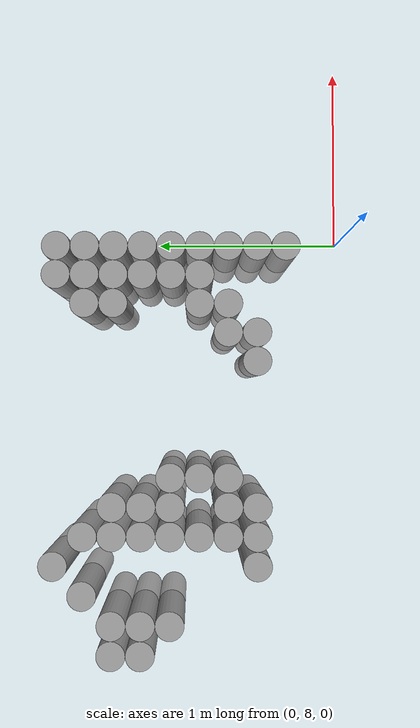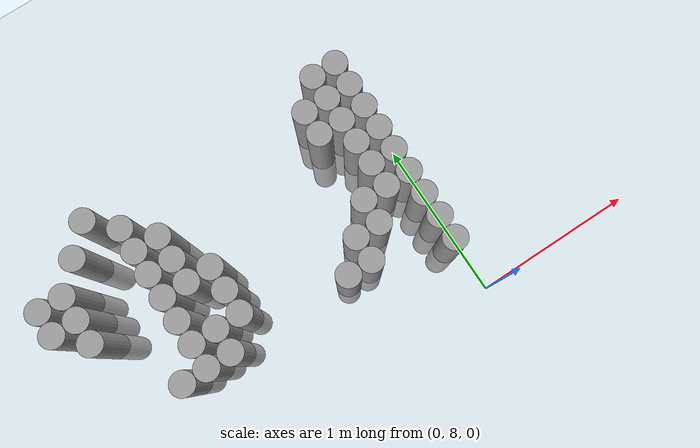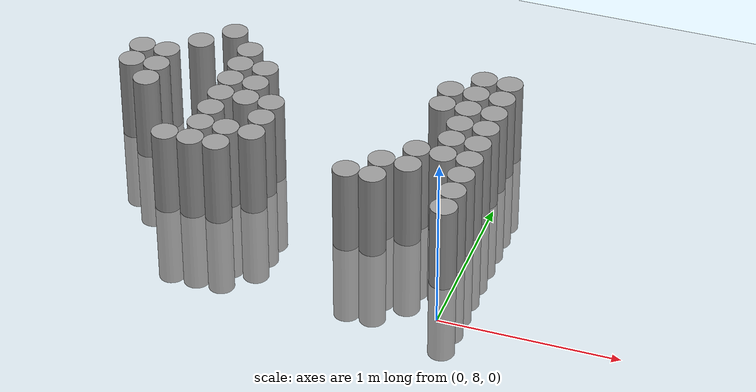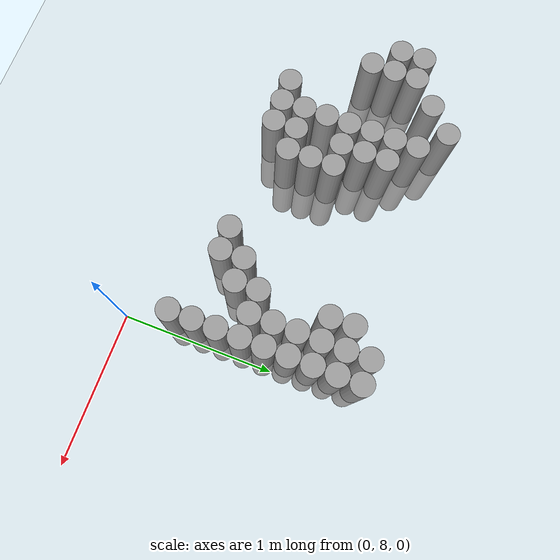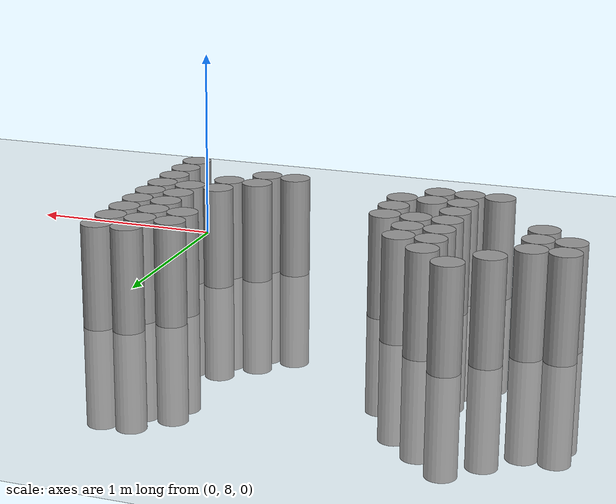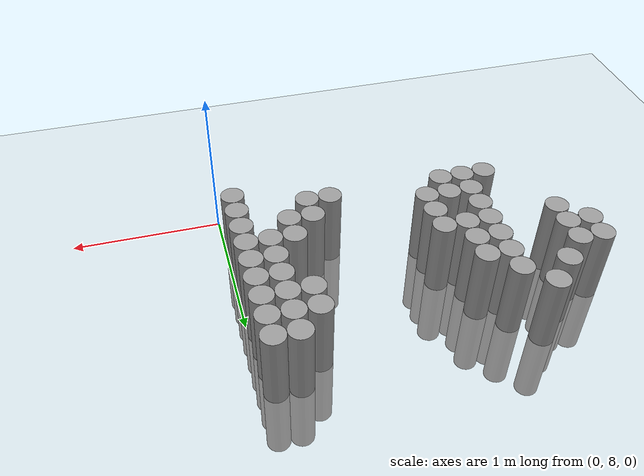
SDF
<sdf version="1.6">
 <world name="default">
  <model name="ground_plane">
   <static>1</static>
   <link name="link">
    <collision name="collision">
     <geometry><plane><normal>0 0 1</normal><size>100 100</size></plane></geometry>
     <surface><friction><ode><mu>100</mu><mu2>50</mu2></ode></friction></surface>
    </collision>
    <visual name="visual">
     <cast_shadows>0</cast_shadows>
     <geometry><plane><normal>0 0 1</normal><size>100 100</size></plane></geometry>
     <material>
      <script><uri>file://media/materials/scripts/gazebo.material</uri><name>Gazebo/Grey</name></script>
     </material>
    </visual>
   </link>
  </model>
  <model name="unit_cylinder_180">
   <pose>-2.175000 9.075000 0.000000 0.000000 0.000000 0.000000</pose>
   <link name="link">
    <inertial>
     <mass>1</mass>
     <inertia><ixx>0.145833</ixx><ixy>0</ixy><ixz>0</ixz><iyy>0.145833</iyy><iyz>0</iyz><izz>0.125</izz></inertia>
    </inertial>
    <collision name="collision">
     <geometry><cylinder><radius>0.075000</radius><length>1</length></cylinder></geometry>
    </collision>
    <visual name="visual">
     <geometry><cylinder><radius>0.075000</radius><length>1</length></cylinder></geometry>
     <material>
      <script><name>Gazebo/Grey</name><uri>file://media/materials/scripts/gazebo.material</uri></script>
     </material>
    </visual>
   </link>
  </model>
  <model name="unit_cylinder_181">
   <pose>-2.175000 9.225000 0.000000 0.000000 0.000000 0.000000</pose>
   <link name="link">
    <inertial>
     <mass>1</mass>
     <inertia><ixx>0.145833</ixx><ixy>0</ixy><ixz>0</ixz><iyy>0.145833</iyy><iyz>0</iyz><izz>0.125</izz></inertia>
    </inertial>
    <collision name="collision">
     <geometry><cylinder><radius>0.075000</radius><length>1</length></cylinder></geometry>
    </collision>
    <visual name="visual">
     <geometry><cylinder><radius>0.075000</radius><length>1</length></cylinder></geometry>
     <material>
      <script><name>Gazebo/Grey</name><uri>file://media/materials/scripts/gazebo.material</uri></script>
     </material>
    </visual>
   </link>
  </model>
  <model name="unit_cylinder_185">
   <pose>-2.025000 8.925000 0.000000 0.000000 0.000000 0.000000</pose>
   <link name="link">
    <inertial>
     <mass>1</mass>
     <inertia><ixx>0.145833</ixx><ixy>0</ixy><ixz>0</ixz><iyy>0.145833</iyy><iyz>0</iyz><izz>0.125</izz></inertia>
    </inertial>
    <collision name="collision">
     <geometry><cylinder><radius>0.075000</radius><length>1</length></cylinder></geometry>
    </collision>
    <visual name="visual">
     <geometry><cylinder><radius>0.075000</radius><length>1</length></cylinder></geometry>
     <material>
      <script><name>Gazebo/Grey</name><uri>file://media/materials/scripts/gazebo.material</uri></script>
     </material>
    </visual>
   </link>
  </model>
  <model name="unit_cylinder_186">
   <pose>-2.025000 9.075000 0.000000 0.000000 0.000000 0.000000</pose>
   <link name="link">
    <inertial>
     <mass>1</mass>
     <inertia><ixx>0.145833</ixx><ixy>0</ixy><ixz>0</ixz><iyy>0.145833</iyy><iyz>0</iyz><izz>0.125</izz></inertia>
    </inertial>
    <collision name="collision">
     <geometry><cylinder><radius>0.075000</radius><length>1</length></cylinder></geometry>
    </collision>
    <visual name="visual">
     <geometry><cylinder><radius>0.075000</radius><length>1</length></cylinder></geometry>
     <material>
      <script><name>Gazebo/Grey</name><uri>file://media/materials/scripts/gazebo.material</uri></script>
     </material>
    </visual>
   </link>
  </model>
  <model name="unit_cylinder_187">
   <pose>-2.025000 9.225000 0.000000 0.000000 0.000000 0.000000</pose>
   <link name="link">
    <inertial>
     <mass>1</mass>
     <inertia><ixx>0.145833</ixx><ixy>0</ixy><ixz>0</ixz><iyy>0.145833</iyy><iyz>0</iyz><izz>0.125</izz></inertia>
    </inertial>
    <collision name="collision">
     <geometry><cylinder><radius>0.075000</radius><length>1</length></cylinder></geometry>
    </collision>
    <visual name="visual">
     <geometry><cylinder><radius>0.075000</radius><length>1</length></cylinder></geometry>
     <material>
      <script><name>Gazebo/Grey</name><uri>file://media/materials/scripts/gazebo.material</uri></script>
     </material>
    </visual>
   </link>
  </model>
  <model name="unit_cylinder_194">
   <pose>-1.875000 9.375000 0.000000 0.000000 0.000000 0.000000</pose>
   <link name="link">
    <inertial>
     <mass>1</mass>
     <inertia><ixx>0.145833</ixx><ixy>0</ixy><ixz>0</ixz><iyy>0.145833</iyy><iyz>0</iyz><izz>0.125</izz></inertia>
    </inertial>
    <collision name="collision">
     <geometry><cylinder><radius>0.075000</radius><length>1</length></cylinder></geometry>
    </collision>
    <visual name="visual">
     <geometry><cylinder><radius>0.075000</radius><length>1</length></cylinder></geometry>
     <material>
      <script><name>Gazebo/Grey</name><uri>file://media/materials/scripts/gazebo.material</uri></script>
     </material>
    </visual>
   </link>
  </model>
  <model name="unit_cylinder_203">
   <pose>-1.725000 8.475000 0.000000 0.000000 0.000000 0.000000</pose>
   <link name="link">
    <inertial>
     <mass>1</mass>
     <inertia><ixx>0.145833</ixx><ixy>0</ixy><ixz>0</ixz><iyy>0.145833</iyy><iyz>0</iyz><izz>0.125</izz></inertia>
    </inertial>
    <collision name="collision">
     <geometry><cylinder><radius>0.075000</radius><length>1</length></cylinder></geometry>
    </collision>
    <visual name="visual">
     <geometry><cylinder><radius>0.075000</radius><length>1</length></cylinder></geometry>
     <material>
      <script><name>Gazebo/Grey</name><uri>file://media/materials/scripts/gazebo.material</uri></script>
     </material>
    </visual>
   </link>
  </model>
  <model name="unit_cylinder_204">
   <pose>-1.725000 9.525000 0.000000 0.000000 0.000000 0.000000</pose>
   <link name="link">
    <inertial>
     <mass>1</mass>
     <inertia><ixx>0.145833</ixx><ixy>0</ixy><ixz>0</ixz><iyy>0.145833</iyy><iyz>0</iyz><izz>0.125</izz></inertia>
    </inertial>
    <collision name="collision">
     <geometry><cylinder><radius>0.075000</radius><length>1</length></cylinder></geometry>
    </collision>
    <visual name="visual">
     <geometry><cylinder><radius>0.075000</radius><length>1</length></cylinder></geometry>
     <material>
      <script><name>Gazebo/Grey</name><uri>file://media/materials/scripts/gazebo.material</uri></script>
     </material>
    </visual>
   </link>
  </model>
  <model name="unit_cylinder_216">
   <pose>-1.575000 8.475000 0.000000 0.000000 0.000000 0.000000</pose>
   <link name="link">
    <inertial>
     <mass>1</mass>
     <inertia><ixx>0.145833</ixx><ixy>0</ixy><ixz>0</ixz><iyy>0.145833</iyy><iyz>0</iyz><izz>0.125</izz></inertia>
    </inertial>
    <collision name="collision">
     <geometry><cylinder><radius>0.075000</radius><length>1</length></cylinder></geometry>
    </collision>
    <visual name="visual">
     <geometry><cylinder><radius>0.075000</radius><length>1</length></cylinder></geometry>
     <material>
      <script><name>Gazebo/Grey</name><uri>file://media/materials/scripts/gazebo.material</uri></script>
     </material>
    </visual>
   </link>
  </model>
  <model name="unit_cylinder_217">
   <pose>-1.575000 8.625000 0.000000 0.000000 0.000000 0.000000</pose>
   <link name="link">
    <inertial>
     <mass>1</mass>
     <inertia><ixx>0.145833</ixx><ixy>0</ixy><ixz>0</ixz><iyy>0.145833</iyy><iyz>0</iyz><izz>0.125</izz></inertia>
    </inertial>
    <collision name="collision">
     <geometry><cylinder><radius>0.075000</radius><length>1</length></cylinder></geometry>
    </collision>
    <visual name="visual">
     <geometry><cylinder><radius>0.075000</radius><length>1</length></cylinder></geometry>
     <material>
      <script><name>Gazebo/Grey</name><uri>file://media/materials/scripts/gazebo.material</uri></script>
     </material>
    </visual>
   </link>
  </model>
  <model name="unit_cylinder_218">
   <pose>-1.575000 8.775000 0.000000 0.000000 0.000000 0.000000</pose>
   <link name="link">
    <inertial>
     <mass>1</mass>
     <inertia><ixx>0.145833</ixx><ixy>0</ixy><ixz>0</ixz><iyy>0.145833</iyy><iyz>0</iyz><izz>0.125</izz></inertia>
    </inertial>
    <collision name="collision">
     <geometry><cylinder><radius>0.075000</radius><length>1</length></cylinder></geometry>
    </collision>
    <visual name="visual">
     <geometry><cylinder><radius>0.075000</radius><length>1</length></cylinder></geometry>
     <material>
      <script><name>Gazebo/Grey</name><uri>file://media/materials/scripts/gazebo.material</uri></script>
     </material>
    </visual>
   </link>
  </model>
  <model name="unit_cylinder_219">
   <pose>-1.575000 8.925000 0.000000 0.000000 0.000000 0.000000</pose>
   <link name="link">
    <inertial>
     <mass>1</mass>
     <inertia><ixx>0.145833</ixx><ixy>0</ixy><ixz>0</ixz><iyy>0.145833</iyy><iyz>0</iyz><izz>0.125</izz></inertia>
    </inertial>
    <collision name="collision">
     <geometry><cylinder><radius>0.075000</radius><length>1</length></cylinder></geometry>
    </collision>
    <visual name="visual">
     <geometry><cylinder><radius>0.075000</radius><length>1</length></cylinder></geometry>
     <material>
      <script><name>Gazebo/Grey</name><uri>file://media/materials/scripts/gazebo.material</uri></script>
     </material>
    </visual>
   </link>
  </model>
  <model name="unit_cylinder_220">
   <pose>-1.575000 9.075000 0.000000 0.000000 0.000000 0.000000</pose>
   <link name="link">
    <inertial>
     <mass>1</mass>
     <inertia><ixx>0.145833</ixx><ixy>0</ixy><ixz>0</ixz><iyy>0.145833</iyy><iyz>0</iyz><izz>0.125</izz></inertia>
    </inertial>
    <collision name="collision">
     <geometry><cylinder><radius>0.075000</radius><length>1</length></cylinder></geometry>
    </collision>
    <visual name="visual">
     <geometry><cylinder><radius>0.075000</radius><length>1</length></cylinder></geometry>
     <material>
      <script><name>Gazebo/Grey</name><uri>file://media/materials/scripts/gazebo.material</uri></script>
     </material>
    </visual>
   </link>
  </model>
  <model name="unit_cylinder_221">
   <pose>-1.575000 9.225000 0.000000 0.000000 0.000000 0.000000</pose>
   <link name="link">
    <inertial>
     <mass>1</mass>
     <inertia><ixx>0.145833</ixx><ixy>0</ixy><ixz>0</ixz><iyy>0.145833</iyy><iyz>0</iyz><izz>0.125</izz></inertia>
    </inertial>
    <collision name="collision">
     <geometry><cylinder><radius>0.075000</radius><length>1</length></cylinder></geometry>
    </collision>
    <visual name="visual">
     <geometry><cylinder><radius>0.075000</radius><length>1</length></cylinder></geometry>
     <material>
      <script><name>Gazebo/Grey</name><uri>file://media/materials/scripts/gazebo.material</uri></script>
     </material>
    </visual>
   </link>
  </model>
  <model name="unit_cylinder_222">
   <pose>-1.575000 9.375000 0.000000 0.000000 0.000000 0.000000</pose>
   <link name="link">
    <inertial>
     <mass>1</mass>
     <inertia><ixx>0.145833</ixx><ixy>0</ixy><ixz>0</ixz><iyy>0.145833</iyy><iyz>0</iyz><izz>0.125</izz></inertia>
    </inertial>
    <collision name="collision">
     <geometry><cylinder><radius>0.075000</radius><length>1</length></cylinder></geometry>
    </collision>
    <visual name="visual">
     <geometry><cylinder><radius>0.075000</radius><length>1</length></cylinder></geometry>
     <material>
      <script><name>Gazebo/Grey</name><uri>file://media/materials/scripts/gazebo.material</uri></script>
     </material>
    </visual>
   </link>
  </model>
  <model name="unit_cylinder_230">
   <pose>-1.425000 8.475000 0.000000 0.000000 0.000000 0.000000</pose>
   <link name="link">
    <inertial>
     <mass>1</mass>
     <inertia><ixx>0.145833</ixx><ixy>0</ixy><ixz>0</ixz><iyy>0.145833</iyy><iyz>0</iyz><izz>0.125</izz></inertia>
    </inertial>
    <collision name="collision">
     <geometry><cylinder><radius>0.075000</radius><length>1</length></cylinder></geometry>
    </collision>
    <visual name="visual">
     <geometry><cylinder><radius>0.075000</radius><length>1</length></cylinder></geometry>
     <material>
      <script><name>Gazebo/Grey</name><uri>file://media/materials/scripts/gazebo.material</uri></script>
     </material>
    </visual>
   </link>
  </model>
  <model name="unit_cylinder_231">
   <pose>-1.425000 8.625000 0.000000 0.000000 0.000000 0.000000</pose>
   <link name="link">
    <inertial>
     <mass>1</mass>
     <inertia><ixx>0.145833</ixx><ixy>0</ixy><ixz>0</ixz><iyy>0.145833</iyy><iyz>0</iyz><izz>0.125</izz></inertia>
    </inertial>
    <collision name="collision">
     <geometry><cylinder><radius>0.075000</radius><length>1</length></cylinder></geometry>
    </collision>
    <visual name="visual">
     <geometry><cylinder><radius>0.075000</radius><length>1</length></cylinder></geometry>
     <material>
      <script><name>Gazebo/Grey</name><uri>file://media/materials/scripts/gazebo.material</uri></script>
     </material>
    </visual>
   </link>
  </model>
  <model name="unit_cylinder_232">
   <pose>-1.425000 8.925000 0.000000 0.000000 0.000000 0.000000</pose>
   <link name="link">
    <inertial>
     <mass>1</mass>
     <inertia><ixx>0.145833</ixx><ixy>0</ixy><ixz>0</ixz><iyy>0.145833</iyy><iyz>0</iyz><izz>0.125</izz></inertia>
    </inertial>
    <collision name="collision">
     <geometry><cylinder><radius>0.075000</radius><length>1</length></cylinder></geometry>
    </collision>
    <visual name="visual">
     <geometry><cylinder><radius>0.075000</radius><length>1</length></cylinder></geometry>
     <material>
      <script><name>Gazebo/Grey</name><uri>file://media/materials/scripts/gazebo.material</uri></script>
     </material>
    </visual>
   </link>
  </model>
  <model name="unit_cylinder_233">
   <pose>-1.425000 9.075000 0.000000 0.000000 0.000000 0.000000</pose>
   <link name="link">
    <inertial>
     <mass>1</mass>
     <inertia><ixx>0.145833</ixx><ixy>0</ixy><ixz>0</ixz><iyy>0.145833</iyy><iyz>0</iyz><izz>0.125</izz></inertia>
    </inertial>
    <collision name="collision">
     <geometry><cylinder><radius>0.075000</radius><length>1</length></cylinder></geometry>
    </collision>
    <visual name="visual">
     <geometry><cylinder><radius>0.075000</radius><length>1</length></cylinder></geometry>
     <material>
      <script><name>Gazebo/Grey</name><uri>file://media/materials/scripts/gazebo.material</uri></script>
     </material>
    </visual>
   </link>
  </model>
  <model name="unit_cylinder_234">
   <pose>-1.425000 9.225000 0.000000 0.000000 0.000000 0.000000</pose>
   <link name="link">
    <inertial>
     <mass>1</mass>
     <inertia><ixx>0.145833</ixx><ixy>0</ixy><ixz>0</ixz><iyy>0.145833</iyy><iyz>0</iyz><izz>0.125</izz></inertia>
    </inertial>
    <collision name="collision">
     <geometry><cylinder><radius>0.075000</radius><length>1</length></cylinder></geometry>
    </collision>
    <visual name="visual">
     <geometry><cylinder><radius>0.075000</radius><length>1</length></cylinder></geometry>
     <material>
      <script><name>Gazebo/Grey</name><uri>file://media/materials/scripts/gazebo.material</uri></script>
     </material>
    </visual>
   </link>
  </model>
  <model name="unit_cylinder_245">
   <pose>-1.275000 8.625000 0.000000 0.000000 0.000000 0.000000</pose>
   <link name="link">
    <inertial>
     <mass>1</mass>
     <inertia><ixx>0.145833</ixx><ixy>0</ixy><ixz>0</ixz><iyy>0.145833</iyy><iyz>0</iyz><izz>0.125</izz></inertia>
    </inertial>
    <collision name="collision">
     <geometry><cylinder><radius>0.075000</radius><length>1</length></cylinder></geometry>
    </collision>
    <visual name="visual">
     <geometry><cylinder><radius>0.075000</radius><length>1</length></cylinder></geometry>
     <material>
      <script><name>Gazebo/Grey</name><uri>file://media/materials/scripts/gazebo.material</uri></script>
     </material>
    </visual>
   </link>
  </model>
  <model name="unit_cylinder_246">
   <pose>-1.275000 8.775000 0.000000 0.000000 0.000000 0.000000</pose>
   <link name="link">
    <inertial>
     <mass>1</mass>
     <inertia><ixx>0.145833</ixx><ixy>0</ixy><ixz>0</ixz><iyy>0.145833</iyy><iyz>0</iyz><izz>0.125</izz></inertia>
    </inertial>
    <collision name="collision">
     <geometry><cylinder><radius>0.075000</radius><length>1</length></cylinder></geometry>
    </collision>
    <visual name="visual">
     <geometry><cylinder><radius>0.075000</radius><length>1</length></cylinder></geometry>
     <material>
      <script><name>Gazebo/Grey</name><uri>file://media/materials/scripts/gazebo.material</uri></script>
     </material>
    </visual>
   </link>
  </model>
  <model name="unit_cylinder_247">
   <pose>-1.275000 8.925000 0.000000 0.000000 0.000000 0.000000</pose>
   <link name="link">
    <inertial>
     <mass>1</mass>
     <inertia><ixx>0.145833</ixx><ixy>0</ixy><ixz>0</ixz><iyy>0.145833</iyy><iyz>0</iyz><izz>0.125</izz></inertia>
    </inertial>
    <collision name="collision">
     <geometry><cylinder><radius>0.075000</radius><length>1</length></cylinder></geometry>
    </collision>
    <visual name="visual">
     <geometry><cylinder><radius>0.075000</radius><length>1</length></cylinder></geometry>
     <material>
      <script><name>Gazebo/Grey</name><uri>file://media/materials/scripts/gazebo.material</uri></script>
     </material>
    </visual>
   </link>
  </model>
  <model name="unit_cylinder_262">
   <pose>-0.675000 8.475000 0.000000 0.000000 0.000000 0.000000</pose>
   <link name="link">
    <inertial>
     <mass>1</mass>
     <inertia><ixx>0.145833</ixx><ixy>0</ixy><ixz>0</ixz><iyy>0.145833</iyy><iyz>0</iyz><izz>0.125</izz></inertia>
    </inertial>
    <collision name="collision">
     <geometry><cylinder><radius>0.075000</radius><length>1</length></cylinder></geometry>
    </collision>
    <visual name="visual">
     <geometry><cylinder><radius>0.075000</radius><length>1</length></cylinder></geometry>
     <material>
      <script><name>Gazebo/Grey</name><uri>file://media/materials/scripts/gazebo.material</uri></script>
     </material>
    </visual>
   </link>
  </model>
  <model name="unit_cylinder_268">
   <pose>-0.525000 8.475000 0.000000 0.000000 0.000000 0.000000</pose>
   <link name="link">
    <inertial>
     <mass>1</mass>
     <inertia><ixx>0.145833</ixx><ixy>0</ixy><ixz>0</ixz><iyy>0.145833</iyy><iyz>0</iyz><izz>0.125</izz></inertia>
    </inertial>
    <collision name="collision">
     <geometry><cylinder><radius>0.075000</radius><length>1</length></cylinder></geometry>
    </collision>
    <visual name="visual">
     <geometry><cylinder><radius>0.075000</radius><length>1</length></cylinder></geometry>
     <material>
      <script><name>Gazebo/Grey</name><uri>file://media/materials/scripts/gazebo.material</uri></script>
     </material>
    </visual>
   </link>
  </model>
  <model name="unit_cylinder_269">
   <pose>-0.525000 8.625000 0.000000 0.000000 0.000000 0.000000</pose>
   <link name="link">
    <inertial>
     <mass>1</mass>
     <inertia><ixx>0.145833</ixx><ixy>0</ixy><ixz>0</ixz><iyy>0.145833</iyy><iyz>0</iyz><izz>0.125</izz></inertia>
    </inertial>
    <collision name="collision">
     <geometry><cylinder><radius>0.075000</radius><length>1</length></cylinder></geometry>
    </collision>
    <visual name="visual">
     <geometry><cylinder><radius>0.075000</radius><length>1</length></cylinder></geometry>
     <material>
      <script><name>Gazebo/Grey</name><uri>file://media/materials/scripts/gazebo.material</uri></script>
     </material>
    </visual>
   </link>
  </model>
  <model name="unit_cylinder_278">
   <pose>-0.375000 8.625000 0.000000 0.000000 0.000000 0.000000</pose>
   <link name="link">
    <inertial>
     <mass>1</mass>
     <inertia><ixx>0.145833</ixx><ixy>0</ixy><ixz>0</ixz><iyy>0.145833</iyy><iyz>0</iyz><izz>0.125</izz></inertia>
    </inertial>
    <collision name="collision">
     <geometry><cylinder><radius>0.075000</radius><length>1</length></cylinder></geometry>
    </collision>
    <visual name="visual">
     <geometry><cylinder><radius>0.075000</radius><length>1</length></cylinder></geometry>
     <material>
      <script><name>Gazebo/Grey</name><uri>file://media/materials/scripts/gazebo.material</uri></script>
     </material>
    </visual>
   </link>
  </model>
  <model name="unit_cylinder_279">
   <pose>-0.375000 8.775000 0.000000 0.000000 0.000000 0.000000</pose>
   <link name="link">
    <inertial>
     <mass>1</mass>
     <inertia><ixx>0.145833</ixx><ixy>0</ixy><ixz>0</ixz><iyy>0.145833</iyy><iyz>0</iyz><izz>0.125</izz></inertia>
    </inertial>
    <collision name="collision">
     <geometry><cylinder><radius>0.075000</radius><length>1</length></cylinder></geometry>
    </collision>
    <visual name="visual">
     <geometry><cylinder><radius>0.075000</radius><length>1</length></cylinder></geometry>
     <material>
      <script><name>Gazebo/Grey</name><uri>file://media/materials/scripts/gazebo.material</uri></script>
     </material>
    </visual>
   </link>
  </model>
  <model name="unit_cylinder_280">
   <pose>-0.375000 9.225000 0.000000 0.000000 0.000000 0.000000</pose>
   <link name="link">
    <inertial>
     <mass>1</mass>
     <inertia><ixx>0.145833</ixx><ixy>0</ixy><ixz>0</ixz><iyy>0.145833</iyy><iyz>0</iyz><izz>0.125</izz></inertia>
    </inertial>
    <collision name="collision">
     <geometry><cylinder><radius>0.075000</radius><length>1</length></cylinder></geometry>
    </collision>
    <visual name="visual">
     <geometry><cylinder><radius>0.075000</radius><length>1</length></cylinder></geometry>
     <material>
      <script><name>Gazebo/Grey</name><uri>file://media/materials/scripts/gazebo.material</uri></script>
     </material>
    </visual>
   </link>
  </model>
  <model name="unit_cylinder_281">
   <pose>-0.375000 9.375000 0.000000 0.000000 0.000000 0.000000</pose>
   <link name="link">
    <inertial>
     <mass>1</mass>
     <inertia><ixx>0.145833</ixx><ixy>0</ixy><ixz>0</ixz><iyy>0.145833</iyy><iyz>0</iyz><izz>0.125</izz></inertia>
    </inertial>
    <collision name="collision">
     <geometry><cylinder><radius>0.075000</radius><length>1</length></cylinder></geometry>
    </collision>
    <visual name="visual">
     <geometry><cylinder><radius>0.075000</radius><length>1</length></cylinder></geometry>
     <material>
      <script><name>Gazebo/Grey</name><uri>file://media/materials/scripts/gazebo.material</uri></script>
     </material>
    </visual>
   </link>
  </model>
  <model name="unit_cylinder_295">
   <pose>-0.225000 8.775000 0.000000 0.000000 0.000000 0.000000</pose>
   <link name="link">
    <inertial>
     <mass>1</mass>
     <inertia><ixx>0.145833</ixx><ixy>0</ixy><ixz>0</ixz><iyy>0.145833</iyy><iyz>0</iyz><izz>0.125</izz></inertia>
    </inertial>
    <collision name="collision">
     <geometry><cylinder><radius>0.075000</radius><length>1</length></cylinder></geometry>
    </collision>
    <visual name="visual">
     <geometry><cylinder><radius>0.075000</radius><length>1</length></cylinder></geometry>
     <material>
      <script><name>Gazebo/Grey</name><uri>file://media/materials/scripts/gazebo.material</uri></script>
     </material>
    </visual>
   </link>
  </model>
  <model name="unit_cylinder_296">
   <pose>-0.225000 8.925000 0.000000 0.000000 0.000000 0.000000</pose>
   <link name="link">
    <inertial>
     <mass>1</mass>
     <inertia><ixx>0.145833</ixx><ixy>0</ixy><ixz>0</ixz><iyy>0.145833</iyy><iyz>0</iyz><izz>0.125</izz></inertia>
    </inertial>
    <collision name="collision">
     <geometry><cylinder><radius>0.075000</radius><length>1</length></cylinder></geometry>
    </collision>
    <visual name="visual">
     <geometry><cylinder><radius>0.075000</radius><length>1</length></cylinder></geometry>
     <material>
      <script><name>Gazebo/Grey</name><uri>file://media/materials/scripts/gazebo.material</uri></script>
     </material>
    </visual>
   </link>
  </model>
  <model name="unit_cylinder_297">
   <pose>-0.225000 9.075000 0.000000 0.000000 0.000000 0.000000</pose>
   <link name="link">
    <inertial>
     <mass>1</mass>
     <inertia><ixx>0.145833</ixx><ixy>0</ixy><ixz>0</ixz><iyy>0.145833</iyy><iyz>0</iyz><izz>0.125</izz></inertia>
    </inertial>
    <collision name="collision">
     <geometry><cylinder><radius>0.075000</radius><length>1</length></cylinder></geometry>
    </collision>
    <visual name="visual">
     <geometry><cylinder><radius>0.075000</radius><length>1</length></cylinder></geometry>
     <material>
      <script><name>Gazebo/Grey</name><uri>file://media/materials/scripts/gazebo.material</uri></script>
     </material>
    </visual>
   </link>
  </model>
  <model name="unit_cylinder_298">
   <pose>-0.225000 9.225000 0.000000 0.000000 0.000000 0.000000</pose>
   <link name="link">
    <inertial>
     <mass>1</mass>
     <inertia><ixx>0.145833</ixx><ixy>0</ixy><ixz>0</ixz><iyy>0.145833</iyy><iyz>0</iyz><izz>0.125</izz></inertia>
    </inertial>
    <collision name="collision">
     <geometry><cylinder><radius>0.075000</radius><length>1</length></cylinder></geometry>
    </collision>
    <visual name="visual">
     <geometry><cylinder><radius>0.075000</radius><length>1</length></cylinder></geometry>
     <material>
      <script><name>Gazebo/Grey</name><uri>file://media/materials/scripts/gazebo.material</uri></script>
     </material>
    </visual>
   </link>
  </model>
  <model name="unit_cylinder_299">
   <pose>-0.225000 9.375000 0.000000 0.000000 0.000000 0.000000</pose>
   <link name="link">
    <inertial>
     <mass>1</mass>
     <inertia><ixx>0.145833</ixx><ixy>0</ixy><ixz>0</ixz><iyy>0.145833</iyy><iyz>0</iyz><izz>0.125</izz></inertia>
    </inertial>
    <collision name="collision">
     <geometry><cylinder><radius>0.075000</radius><length>1</length></cylinder></geometry>
    </collision>
    <visual name="visual">
     <geometry><cylinder><radius>0.075000</radius><length>1</length></cylinder></geometry>
     <material>
      <script><name>Gazebo/Grey</name><uri>file://media/materials/scripts/gazebo.material</uri></script>
     </material>
    </visual>
   </link>
  </model>
  <model name="unit_cylinder_300">
   <pose>-0.225000 9.525000 0.000000 0.000000 0.000000 0.000000</pose>
   <link name="link">
    <inertial>
     <mass>1</mass>
     <inertia><ixx>0.145833</ixx><ixy>0</ixy><ixz>0</ixz><iyy>0.145833</iyy><iyz>0</iyz><izz>0.125</izz></inertia>
    </inertial>
    <collision name="collision">
     <geometry><cylinder><radius>0.075000</radius><length>1</length></cylinder></geometry>
    </collision>
    <visual name="visual">
     <geometry><cylinder><radius>0.075000</radius><length>1</length></cylinder></geometry>
     <material>
      <script><name>Gazebo/Grey</name><uri>file://media/materials/scripts/gazebo.material</uri></script>
     </material>
    </visual>
   </link>
  </model>
  <model name="unit_cylinder_322">
   <pose>-0.075000 8.325000 0.000000 0.000000 0.000000 0.000000</pose>
   <link name="link">
    <inertial>
     <mass>1</mass>
     <inertia><ixx>0.145833</ixx><ixy>0</ixy><ixz>0</ixz><iyy>0.145833</iyy><iyz>0</iyz><izz>0.125</izz></inertia>
    </inertial>
    <collision name="collision">
     <geometry><cylinder><radius>0.075000</radius><length>1</length></cylinder></geometry>
    </collision>
    <visual name="visual">
     <geometry><cylinder><radius>0.075000</radius><length>1</length></cylinder></geometry>
     <material>
      <script><name>Gazebo/Grey</name><uri>file://media/materials/scripts/gazebo.material</uri></script>
     </material>
    </visual>
   </link>
  </model>
  <model name="unit_cylinder_323">
   <pose>-0.075000 8.475000 0.000000 0.000000 0.000000 0.000000</pose>
   <link name="link">
    <inertial>
     <mass>1</mass>
     <inertia><ixx>0.145833</ixx><ixy>0</ixy><ixz>0</ixz><iyy>0.145833</iyy><iyz>0</iyz><izz>0.125</izz></inertia>
    </inertial>
    <collision name="collision">
     <geometry><cylinder><radius>0.075000</radius><length>1</length></cylinder></geometry>
    </collision>
    <visual name="visual">
     <geometry><cylinder><radius>0.075000</radius><length>1</length></cylinder></geometry>
     <material>
      <script><name>Gazebo/Grey</name><uri>file://media/materials/scripts/gazebo.material</uri></script>
     </material>
    </visual>
   </link>
  </model>
  <model name="unit_cylinder_324">
   <pose>-0.075000 8.625000 0.000000 0.000000 0.000000 0.000000</pose>
   <link name="link">
    <inertial>
     <mass>1</mass>
     <inertia><ixx>0.145833</ixx><ixy>0</ixy><ixz>0</ixz><iyy>0.145833</iyy><iyz>0</iyz><izz>0.125</izz></inertia>
    </inertial>
    <collision name="collision">
     <geometry><cylinder><radius>0.075000</radius><length>1</length></cylinder></geometry>
    </collision>
    <visual name="visual">
     <geometry><cylinder><radius>0.075000</radius><length>1</length></cylinder></geometry>
     <material>
      <script><name>Gazebo/Grey</name><uri>file://media/materials/scripts/gazebo.material</uri></script>
     </material>
    </visual>
   </link>
  </model>
  <model name="unit_cylinder_325">
   <pose>-0.075000 8.775000 0.000000 0.000000 0.000000 0.000000</pose>
   <link name="link">
    <inertial>
     <mass>1</mass>
     <inertia><ixx>0.145833</ixx><ixy>0</ixy><ixz>0</ixz><iyy>0.145833</iyy><iyz>0</iyz><izz>0.125</izz></inertia>
    </inertial>
    <collision name="collision">
     <geometry><cylinder><radius>0.075000</radius><length>1</length></cylinder></geometry>
    </collision>
    <visual name="visual">
     <geometry><cylinder><radius>0.075000</radius><length>1</length></cylinder></geometry>
     <material>
      <script><name>Gazebo/Grey</name><uri>file://media/materials/scripts/gazebo.material</uri></script>
     </material>
    </visual>
   </link>
  </model>
  <model name="unit_cylinder_326">
   <pose>-0.075000 8.925000 0.000000 0.000000 0.000000 0.000000</pose>
   <link name="link">
    <inertial>
     <mass>1</mass>
     <inertia><ixx>0.145833</ixx><ixy>0</ixy><ixz>0</ixz><iyy>0.145833</iyy><iyz>0</iyz><izz>0.125</izz></inertia>
    </inertial>
    <collision name="collision">
     <geometry><cylinder><radius>0.075000</radius><length>1</length></cylinder></geometry>
    </collision>
    <visual name="visual">
     <geometry><cylinder><radius>0.075000</radius><length>1</length></cylinder></geometry>
     <material>
      <script><name>Gazebo/Grey</name><uri>file://media/materials/scripts/gazebo.material</uri></script>
     </material>
    </visual>
   </link>
  </model>
  <model name="unit_cylinder_327">
   <pose>-0.075000 9.075000 0.000000 0.000000 0.000000 0.000000</pose>
   <link name="link">
    <inertial>
     <mass>1</mass>
     <inertia><ixx>0.145833</ixx><ixy>0</ixy><ixz>0</ixz><iyy>0.145833</iyy><iyz>0</iyz><izz>0.125</izz></inertia>
    </inertial>
    <collision name="collision">
     <geometry><cylinder><radius>0.075000</radius><length>1</length></cylinder></geometry>
    </collision>
    <visual name="visual">
     <geometry><cylinder><radius>0.075000</radius><length>1</length></cylinder></geometry>
     <material>
      <script><name>Gazebo/Grey</name><uri>file://media/materials/scripts/gazebo.material</uri></script>
     </material>
    </visual>
   </link>
  </model>
  <model name="unit_cylinder_328">
   <pose>-0.075000 9.225000 0.000000 0.000000 0.000000 0.000000</pose>
   <link name="link">
    <inertial>
     <mass>1</mass>
     <inertia><ixx>0.145833</ixx><ixy>0</ixy><ixz>0</ixz><iyy>0.145833</iyy><iyz>0</iyz><izz>0.125</izz></inertia>
    </inertial>
    <collision name="collision">
     <geometry><cylinder><radius>0.075000</radius><length>1</length></cylinder></geometry>
    </collision>
    <visual name="visual">
     <geometry><cylinder><radius>0.075000</radius><length>1</length></cylinder></geometry>
     <material>
      <script><name>Gazebo/Grey</name><uri>file://media/materials/scripts/gazebo.material</uri></script>
     </material>
    </visual>
   </link>
  </model>
  <model name="unit_cylinder_329">
   <pose>-0.075000 9.375000 0.000000 0.000000 0.000000 0.000000</pose>
   <link name="link">
    <inertial>
     <mass>1</mass>
     <inertia><ixx>0.145833</ixx><ixy>0</ixy><ixz>0</ixz><iyy>0.145833</iyy><iyz>0</iyz><izz>0.125</izz></inertia>
    </inertial>
    <collision name="collision">
     <geometry><cylinder><radius>0.075000</radius><length>1</length></cylinder></geometry>
    </collision>
    <visual name="visual">
     <geometry><cylinder><radius>0.075000</radius><length>1</length></cylinder></geometry>
     <material>
      <script><name>Gazebo/Grey</name><uri>file://media/materials/scripts/gazebo.material</uri></script>
     </material>
    </visual>
   </link>
  </model>
  <model name="unit_cylinder_330">
   <pose>-0.075000 9.525000 0.000000 0.000000 0.000000 0.000000</pose>
   <link name="link">
    <inertial>
     <mass>1</mass>
     <inertia><ixx>0.145833</ixx><ixy>0</ixy><ixz>0</ixz><iyy>0.145833</iyy><iyz>0</iyz><izz>0.125</izz></inertia>
    </inertial>
    <collision name="collision">
     <geometry><cylinder><radius>0.075000</radius><length>1</length></cylinder></geometry>
    </collision>
    <visual name="visual">
     <geometry><cylinder><radius>0.075000</radius><length>1</length></cylinder></geometry>
     <material>
      <script><name>Gazebo/Grey</name><uri>file://media/materials/scripts/gazebo.material</uri></script>
     </material>
    </visual>
   </link>
  </model>
 </world>
</sdf>
